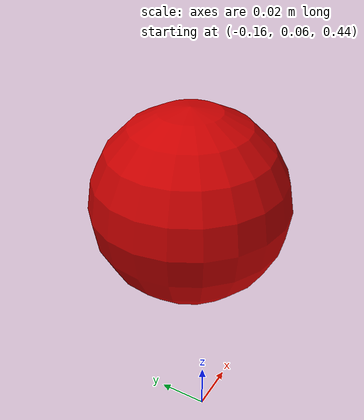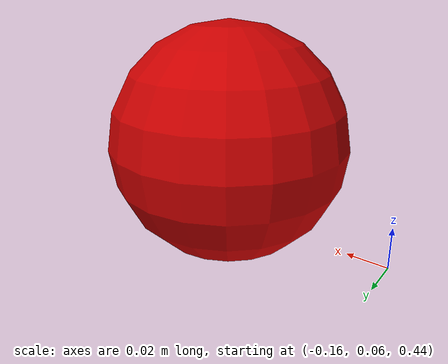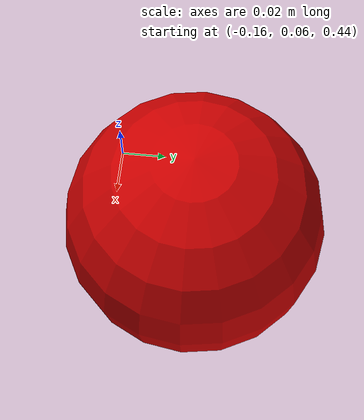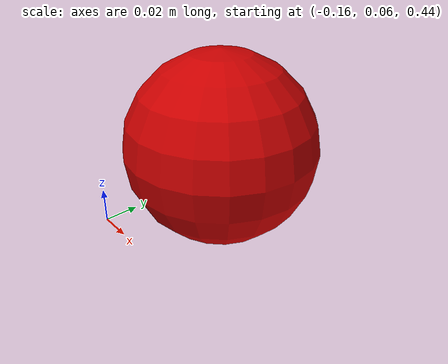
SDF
<?xml version="1.0" ?>
<sdf version="1.6">
  <world name="default">
    <include>
      <uri>model://sun</uri>
    </include>
    <include>
      <uri>model://ground_plane</uri>
    </include>

    <physics name="my_physics" type="ode" enabled="false">
    </physics>

    <model name="interactive_sphere">
      <pose>-0.1 0.1 0.5 0 0 0</pose> <link name="sphere_link">

        <visual name="sphere_visual">
          <geometry>
            <sphere><radius>0.05</radius></sphere>
          </geometry>
          <material>
            <ambient>0.8 0 0 1</ambient> <diffuse>0.8 0 0 1</diffuse>
            <specular>0.1 0.1 0.1 1</specular>
            <emissive>0 0 0 0</emissive>
          </material>
        </visual>

        <collision name="sphere_collision">
          <geometry>
            <sphere><radius>0.05</radius></sphere>
          </geometry>
        </collision>

        <sensor name='sphere_contact_sensor' type='contact'>
          <contact>
            <collision>sphere_collision</collision>
          </contact>
          <plugin name="sphere_bumper_controller" filename="libgazebo_ros_bumper.so">
            <always_on>1</always_on>
            <update_rate>10.0</update_rate>
            <bumperTopicName>sphere_contact</bumperTopicName>
            <frameName>sphere</frameName>
          </plugin>
        </sensor>

      </link>
      <static>false</static> </model>

  </world>
</sdf>
